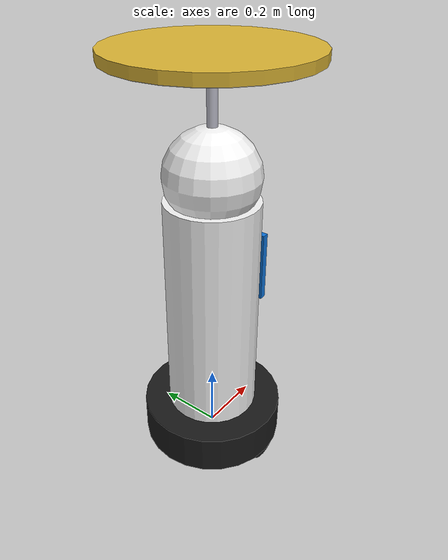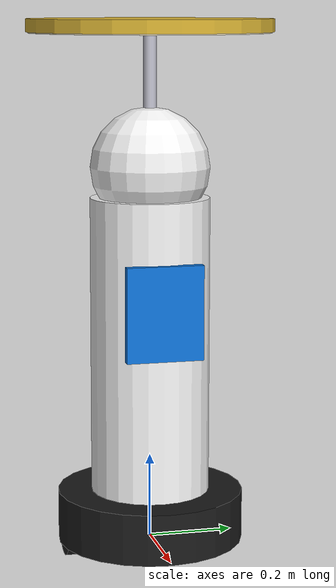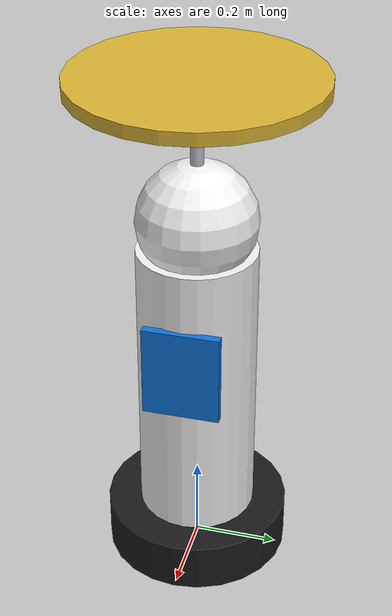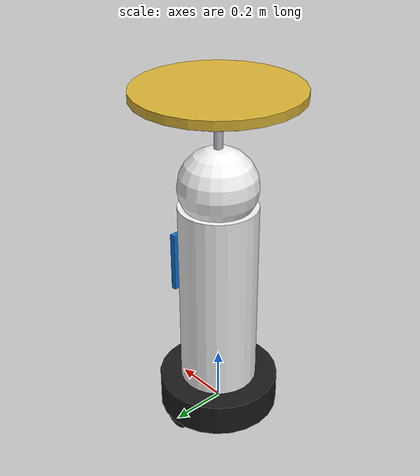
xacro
<?xml version="1.0"?>
<robot name="waiter_robot" xmlns:xacro="http://www.ros.org/wiki/xacro">

  <material name="black">  <color rgba="0.1  0.1  0.1  1.0"/></material>
  <material name="white">  <color rgba="0.95 0.95 0.95 1.0"/></material>
  <material name="gold">   <color rgba="0.85 0.70 0.20 1.0"/></material>
  <material name="silver"> <color rgba="0.75 0.75 0.80 1.0"/></material>
  <material name="blue">   <color rgba="0.05 0.45 0.85 1.0"/></material>
  <material name="cream">  <color rgba="0.90 0.85 0.70 1.0"/></material>
  <material name="red">    <color rgba="0.8  0.1  0.1  1.0"/></material>

  <link name="base_footprint"/>
  <joint name="base_joint" type="fixed">
    <parent link="base_footprint"/><child link="base_link"/>
    <origin xyz="0 0 0.06" rpy="0 0 0"/>
  </joint>

  <link name="base_link">
    <visual><geometry><cylinder length="0.12" radius="0.22"/></geometry><material name="black"/></visual>
    <collision><geometry><cylinder length="0.12" radius="0.22"/></geometry></collision>
    <inertial><mass value="8.0"/>
      <inertia ixx="0.12" ixy="0" ixz="0" iyy="0.12" iyz="0" izz="0.20"/></inertial>
  </link>

  <link name="body_link">
    <visual><geometry><cylinder length="0.70" radius="0.14"/></geometry><material name="white"/></visual>
    <collision><geometry><cylinder length="0.70" radius="0.14"/></geometry></collision>
    <inertial><mass value="5.0"/>
      <inertia ixx="0.22" ixy="0" ixz="0" iyy="0.22" iyz="0" izz="0.05"/></inertial>
  </link>
  <joint name="body_joint" type="fixed">
    <parent link="base_link"/><child link="body_link"/>
    <origin xyz="0 0 0.41" rpy="0 0 0"/>
  </joint>

  <link name="screen_link">
    <visual><geometry><box size="0.02 0.18 0.22"/></geometry><material name="blue"/></visual>
    <inertial><mass value="0.3"/>
      <inertia ixx="1e-3" ixy="0" ixz="0" iyy="1e-3" iyz="0" izz="1e-3"/></inertial>
  </link>
  <joint name="screen_joint" type="fixed">
    <parent link="body_link"/><child link="screen_link"/>
    <origin xyz="0.141 0 0.10" rpy="0 0 0"/>
  </joint>

  <link name="head_link">
    <visual><geometry><sphere radius="0.14"/></geometry><material name="white"/></visual>
    <collision><geometry><sphere radius="0.14"/></geometry></collision>
    <inertial><mass value="1.0"/>
      <inertia ixx="0.01" ixy="0" ixz="0" iyy="0.01" iyz="0" izz="0.01"/></inertial>
  </link>
  <joint name="head_joint" type="fixed">
    <parent link="body_link"/><child link="head_link"/>
    <origin xyz="0 0 0.42" rpy="0 0 0"/>
  </joint>

  <link name="tray_pole_link">
    <visual><geometry><cylinder length="0.35" radius="0.015"/></geometry><material name="silver"/></visual>
    <inertial><mass value="0.2"/>
      <inertia ixx="2e-3" ixy="0" ixz="0" iyy="2e-3" iyz="0" izz="1e-4"/></inertial>
  </link>
  <joint name="tray_pole_joint" type="fixed">
    <parent link="body_link"/><child link="tray_pole_link"/>
    <origin xyz="0 0 0.55" rpy="0 0 0"/>
  </joint>

  <link name="tray_link">
    <visual><geometry><cylinder length="0.025" radius="0.28"/></geometry><material name="cream"/></visual>
    <collision><geometry><cylinder length="0.025" radius="0.28"/></geometry></collision>
    <inertial><mass value="0.8"/>
      <inertia ixx="0.016" ixy="0" ixz="0" iyy="0.016" iyz="0" izz="0.031"/></inertial>
  </link>
  <joint name="tray_joint" type="fixed">
    <parent link="tray_pole_link"/><child link="tray_link"/>
    <origin xyz="0 0 0.19" rpy="0 0 0"/>
  </joint>

  <link name="tray_rim_link">
    <visual><geometry><cylinder length="0.03" radius="0.285"/></geometry><material name="gold"/></visual>
    <inertial><mass value="0.2"/>
      <inertia ixx="5e-3" ixy="0" ixz="0" iyy="5e-3" iyz="0" izz="9e-3"/></inertial>
  </link>
  <joint name="tray_rim_joint" type="fixed">
    <parent link="tray_link"/><child link="tray_rim_link"/>
    <origin xyz="0 0 0.005" rpy="0 0 0"/>
  </joint>

  <link name="left_wheel_link">
    <visual><geometry><cylinder length="0.04" radius="0.06"/></geometry><material name="black"/></visual>
    <collision><geometry><cylinder length="0.04" radius="0.06"/></geometry></collision>
    <inertial><mass value="0.5"/>
      <inertia ixx="4.5e-4" ixy="0" ixz="0" iyy="4.5e-4" iyz="0" izz="9e-4"/></inertial>
  </link>
  <joint name="left_wheel_joint" type="continuous">
    <parent link="base_link"/><child link="left_wheel_link"/>
    <origin xyz="0.0 0.19 -0.03" rpy="-1.5707963 0 0"/>
    <axis xyz="0 0 1"/>
  </joint>

  <link name="right_wheel_link">
    <visual><geometry><cylinder length="0.04" radius="0.06"/></geometry><material name="black"/></visual>
    <collision><geometry><cylinder length="0.04" radius="0.06"/></geometry></collision>
    <inertial><mass value="0.5"/>
      <inertia ixx="4.5e-4" ixy="0" ixz="0" iyy="4.5e-4" iyz="0" izz="9e-4"/></inertial>
  </link>
  <joint name="right_wheel_joint" type="continuous">
    <parent link="base_link"/><child link="right_wheel_link"/>
    <origin xyz="0.0 -0.19 -0.03" rpy="1.5707963 0 0"/>
    <axis xyz="0 0 1"/>
  </joint>

  <link name="caster_front_link">
    <visual><geometry><sphere radius="0.03"/></geometry><material name="silver"/></visual>
    <collision><geometry><sphere radius="0.03"/></geometry></collision>
    <inertial><mass value="0.05"/>
      <inertia ixx="1e-5" ixy="0" ixz="0" iyy="1e-5" iyz="0" izz="1e-5"/></inertial>
  </link>
  <joint name="caster_front_joint" type="fixed">
    <parent link="base_link"/><child link="caster_front_link"/>
    <origin xyz="0.15 0 -0.03" rpy="0 0 0"/>
  </joint>

  <link name="caster_rear_link">
    <visual><geometry><sphere radius="0.03"/></geometry><material name="silver"/></visual>
    <collision><geometry><sphere radius="0.03"/></geometry></collision>
    <inertial><mass value="0.05"/>
      <inertia ixx="1e-5" ixy="0" ixz="0" iyy="1e-5" iyz="0" izz="1e-5"/></inertial>
  </link>
  <joint name="caster_rear_joint" type="fixed">
    <parent link="base_link"/><child link="caster_rear_link"/>
    <origin xyz="-0.15 0 -0.03" rpy="0 0 0"/>
  </joint>

  <link name="lidar_link">
    <visual><geometry><cylinder length="0.04" radius="0.04"/></geometry><material name="red"/></visual>
    <collision><geometry><cylinder length="0.04" radius="0.04"/></geometry></collision>
    <inertial><mass value="0.1"/>
      <inertia ixx="1e-4" ixy="0" ixz="0" iyy="1e-4" iyz="0" izz="1e-4"/></inertial>
  </link>
  <joint name="lidar_joint" type="fixed">
    <parent link="base_link"/><child link="lidar_link"/>
    <origin xyz="0 0 0.18" rpy="0 0 0"/>
  </joint>

  <gazebo>
    <plugin name="gazebo_ros_diff_drive" filename="libgazebo_ros_diff_drive.so">
      <update_rate>30</update_rate>
      <left_joint>left_wheel_joint</left_joint>
      <right_joint>right_wheel_joint</right_joint>
      <wheel_separation>0.38</wheel_separation>
      <wheel_diameter>0.12</wheel_diameter>
      <max_wheel_torque>20</max_wheel_torque>
      <max_wheel_acceleration>1.0</max_wheel_acceleration>
      <command_topic>cmd_vel</command_topic>
      <odometry_topic>odom</odometry_topic>
      <odometry_frame>odom</odometry_frame>
      <robot_base_frame>base_footprint</robot_base_frame>
      <publish_odom>true</publish_odom>
      <publish_odom_tf>true</publish_odom_tf>
      <publish_wheel_tf>false</publish_wheel_tf>
      <ros><remapping>cmd_vel:=cmd_vel</remapping></ros>
    </plugin>
  </gazebo>

  <gazebo reference="lidar_link">
    <sensor name="lidar" type="ray">
      <always_on>true</always_on>
      <visualize>true</visualize>
      <update_rate>10</update_rate>
      <ray>
        <scan><horizontal>
          <samples>360</samples><resolution>1</resolution>
          <min_angle>-3.14159</min_angle><max_angle>3.14159</max_angle>
        </horizontal></scan>
        <range><min>0.15</min><max>8.0</max><resolution>0.01</resolution></range>
        <noise><type>gaussian</type><mean>0.0</mean><stddev>0.01</stddev></noise>
      </ray>
      <plugin name="gazebo_ros_laser" filename="libgazebo_ros_ray_sensor.so">
        <ros><remapping>~/out:=scan</remapping></ros>
        <output_type>sensor_msgs/LaserScan</output_type>
        <frame_name>lidar_link</frame_name>
      </plugin>
    </sensor>
  </gazebo>

  <gazebo reference="caster_front_link"><mu1>0.0</mu1><mu2>0.0</mu2></gazebo>
  <gazebo reference="caster_rear_link"> <mu1>0.0</mu1><mu2>0.0</mu2></gazebo>

</robot>
